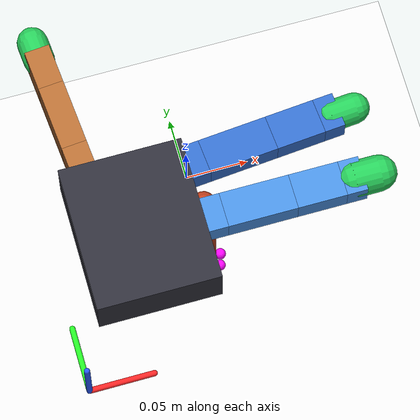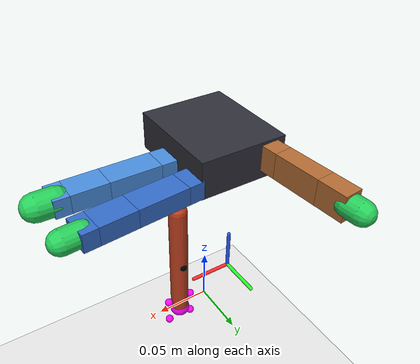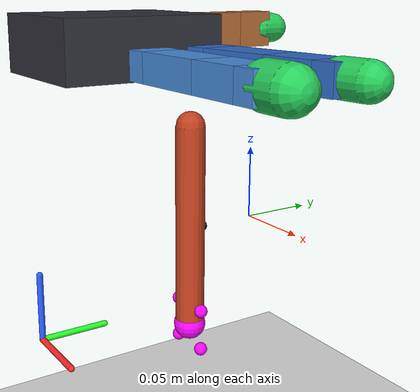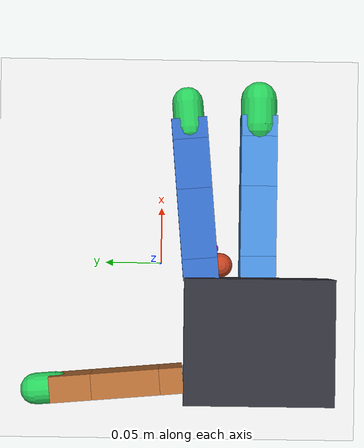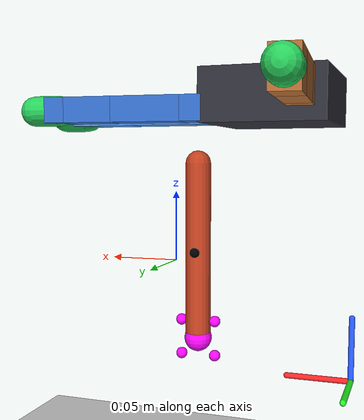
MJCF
<mujoco model="allegro_three_finger_rod">

  <compiler angle="radian" autolimits="true" />
  <option timestep="0.002" integrator="implicitfast" iterations="100" ls_iterations="50" cone="elliptic" impratio="10" gravity="0 0 -9.81" />
  <size njmax="1600" nconmax="300" />

  <default>
    <joint damping="0.1" armature="0.002" />
    <geom density="800" friction="1.8 0.05 0.001" condim="4" solref="0.008 1" solimp="0.95 0.99 0.001" />

    <position kp="20" kv="1.0" ctrllimited="true" forcelimited="true" forcerange="-3 3" />
    <default class="base">
      <joint axis="0 0 1" range="-0.47 0.47" />
      <position ctrlrange="-0.47 0.47" />
    </default>
    <default class="proximal">
      <joint axis="0 1 0" range="-0.196 1.61" />
      <position ctrlrange="-0.196 1.61" />
    </default>
    <default class="medial">
      <joint axis="0 1 0" range="-0.174 1.709" />
      <position ctrlrange="-0.174 1.709" />
    </default>
    <default class="distal">
      <joint axis="0 1 0" range="-0.227 1.618" />
      <position ctrlrange="-0.227 1.618" />
    </default>
    <default class="thumb_base">
      <joint axis="-1 0 0" range="0.263 1.396" />
      <position ctrlrange="0.263 1.396" />
    </default>
    <default class="thumb_proximal">
      <joint axis="0 0 1" range="-0.105 1.163" />
      <position ctrlrange="-0.105 1.163" />
    </default>
    <default class="thumb_medial">
      <joint axis="0 1 0" range="-0.189 1.644" />
      <position ctrlrange="-0.189 1.644" />
    </default>
    <default class="thumb_distal">
      <joint axis="0 1 0" range="-0.162 1.719" />
      <position ctrlrange="-0.162 1.719" />
    </default>
  </default>

  <asset>
    <material name="palm_mat" rgba="0.18 0.18 0.22 1" />
    <material name="index_mat" rgba="0.20 0.42 0.78 1" />
    <material name="middle_mat" rgba="0.28 0.55 0.86 1" />
    <material name="thumb_mat" rgba="0.70 0.42 0.20 1" />
    <material name="tip_mat" rgba="0.15 0.80 0.35 1" />
    <material name="rod_mat" rgba="0.75 0.25 0.12 1" />
  </asset>

  <worldbody>
    <light pos="0 -0.5 0.8" dir="0 0.4 -1" diffuse="0.8 0.8 0.8" />
    <geom name="floor" type="plane" size="1 1 0.1" pos="0 0 -0.20" density="0" rgba="0.9 0.9 0.9 1" />

    <body name="palm" pos="-0.00880298568 -0.0765220422 0.1111" quat="-0.707106781 0 -0.707106781 0">
      <geom name="palm_collision" type="box" size="0.0204 0.0565 0.0475" pos="-0.0093 0 -0.0475" material="palm_mat" />

      <body name="finger0" pos="0 0.0435 -0.001542" quat="0.999048 -0.0436194 0 0">
        <joint name="f0_j0" class="base" />
        <geom type="box" size="0.0098 0.01375 0.0082" pos="0 0 0.0082" material="index_mat" />
        <body name="f0_proximal" pos="0 0 0.0164">
          <joint name="f0_j1" class="proximal" />
          <geom type="box" size="0.0098 0.01375 0.027" pos="0 0 0.027" material="index_mat" />
          <body name="f0_medial" pos="0 0 0.054">
            <joint name="f0_j2" class="medial" />
            <geom type="box" size="0.0098 0.01375 0.0192" pos="0 0 0.0192" material="index_mat" />
            <body name="f0_distal" pos="0 0 0.0384">
              <joint name="f0_j3" class="distal" />
              <geom type="box" size="0.0098 0.01375 0.008" pos="0 0 0.008" material="index_mat" />
              <body name="f0_tip">
                <geom name="tip0" type="capsule" size="0.012 0.01" pos="0 0 0.019" material="tip_mat" />
                <site name="tip0_site" pos="0 0 0.019" size="0.004" />
              </body>
            </body>
          </body>
        </body>
      </body>

      <body name="finger1" pos="0 0 0.0007">
        <joint name="f1_j0" class="base" />
        <geom type="box" size="0.0098 0.01375 0.0082" pos="0 0 0.0082" material="middle_mat" />
        <body name="f1_proximal" pos="0 0 0.0164">
          <joint name="f1_j1" class="proximal" />
          <geom type="box" size="0.0098 0.01375 0.027" pos="0 0 0.027" material="middle_mat" />
          <body name="f1_medial" pos="0 0 0.054">
            <joint name="f1_j2" class="medial" />
            <geom type="box" size="0.0098 0.01375 0.0192" pos="0 0 0.0192" material="middle_mat" />
            <body name="f1_distal" pos="0 0 0.0384">
              <joint name="f1_j3" class="distal" />
              <geom type="box" size="0.0098 0.01375 0.008" pos="0 0 0.008" material="middle_mat" />
              <body name="f1_tip">

                <geom name="tip1" type="capsule" size="0.014 0.01" pos="0 0 0.019" material="tip_mat" />
                <site name="tip1_site" pos="0 0 0.019" size="0.004" />
              </body>
            </body>
          </body>
        </body>
      </body>

      <body name="finger2" pos="-0.0182 0.019333 -0.045987" quat="0.477714 -0.521334 -0.521334 -0.477714">
        <joint name="f2_j0" class="thumb_base" />
        <geom type="box" size="0.0179 0.017 0.02275" pos="-0.0179 0.009 0.0145" material="thumb_mat" />
        <body name="f2_proximal" pos="-0.027 0.005 0.0399">
          <joint name="f2_j1" class="thumb_proximal" />
          <geom type="box" size="0.0098 0.01375 0.00885" pos="0 0 0.00885" material="thumb_mat" />
          <body name="f2_medial" pos="0 0 0.0177">
            <joint name="f2_j2" class="thumb_medial" />
            <geom type="box" size="0.0098 0.01375 0.0257" pos="0 0 0.0257" material="thumb_mat" />
            <body name="f2_distal" pos="0 0 0.0514">
              <joint name="f2_j3" class="thumb_distal" />
              <geom type="box" size="0.0098 0.01375 0.0157" pos="0 0 0.0157" material="thumb_mat" />
              <body name="f2_tip">
                <geom name="tip2" type="capsule" size="0.012 0.008" pos="0 0 0.035" material="tip_mat" />
                <site name="tip2_site" pos="0 0 0.035" size="0.004" />
              </body>
            </body>
          </body>
        </body>
      </body>
    </body>

    <body name="rod" pos="0 -0.05 0" quat="0.7071068 0 0.7071068 0">
      <joint name="rod_free" type="free" damping="0.05" armature="0.002" />
      <geom name="rod_geom" type="capsule" fromto="-0.07 0 0 0.07 0 0" size="0.01" density="350" material="rod_mat" />
      <site name="rod_tip" pos="0.07 0 0" size="0.005" rgba="1 1 0 1" />
      <site name="rod_axis_mark" pos="0 0.009 0" size="0.004" rgba="0 0 0 1" />
    </body>
    <site name="tip_target" pos="0 -0.05 -0.07" size="0.007" rgba="1 0 1 0.45" />
  <geom name="preview_world_x" type="capsule" fromto="-0.115 -0.115 -0.115 -0.06 -0.115 -0.115" size="0.0025" rgba="1 0.15 0.15 1" density="0" contype="0" conaffinity="0" /><geom name="preview_world_y" type="capsule" fromto="-0.115 -0.115 -0.115 -0.115 -0.06 -0.115" size="0.0025" rgba="0.15 1 0.15 1" density="0" contype="0" conaffinity="0" /><geom name="preview_world_z" type="capsule" fromto="-0.115 -0.115 -0.115 -0.115 -0.115 -0.06" size="0.0025" rgba="0.15 0.35 1 1" density="0" contype="0" conaffinity="0" /><site name="preview_point_connect_anchor" type="sphere" pos="0 -0.05 -0.07" size="0.011" rgba="1 0.02 1 1" /><site name="preview_point_connect_satellite_0" type="sphere" pos="0.014 -0.05 -0.056" size="0.0045" rgba="1 0.02 1 1" /><site name="preview_point_connect_satellite_1" type="sphere" pos="-0.014 -0.05 -0.056" size="0.0045" rgba="1 0.02 1 1" /><site name="preview_point_connect_satellite_2" type="sphere" pos="0.014 -0.05 -0.084" size="0.0045" rgba="1 0.02 1 1" /><site name="preview_point_connect_satellite_3" type="sphere" pos="-0.014 -0.05 -0.084" size="0.0045" rgba="1 0.02 1 1" /></worldbody>

  <contact>
    <exclude body1="palm" body2="finger0" />
    <exclude body1="palm" body2="finger1" />
    <exclude body1="palm" body2="finger2" />
    <exclude body1="palm" body2="f2_proximal" />
  </contact>

  <equality>
    <connect name="tip_anchor" body1="rod" anchor="0.07 0 0" solref="0.008 1" solimp="0.95 0.99 0.001" />
  </equality>

  <actuator>
    <position name="a0" joint="f0_j0" class="base" />
    <position name="a1" joint="f0_j1" class="proximal" />
    <position name="a2" joint="f0_j2" class="medial" />
    <position name="a3" joint="f0_j3" class="distal" />
    <position name="a4" joint="f1_j0" class="base" />
    <position name="a5" joint="f1_j1" class="proximal" />
    <position name="a6" joint="f1_j2" class="medial" />
    <position name="a7" joint="f1_j3" class="distal" />
    <position name="a8" joint="f2_j0" class="thumb_base" />
    <position name="a9" joint="f2_j1" class="thumb_proximal" />
    <position name="a10" joint="f2_j2" class="thumb_medial" />
    <position name="a11" joint="f2_j3" class="thumb_distal" />
  </actuator>

  <sensor>
    <touch name="touch0" site="tip0_site" />
    <touch name="touch1" site="tip1_site" />
    <touch name="touch2" site="tip2_site" />
    <framepos name="rod_tip_pos" objtype="site" objname="rod_tip" />
    <framequat name="rod_quat" objtype="body" objname="rod" />
    <framelinvel name="rod_linvel" objtype="body" objname="rod" />
    <frameangvel name="rod_angvel" objtype="body" objname="rod" />
  </sensor>
</mujoco>
